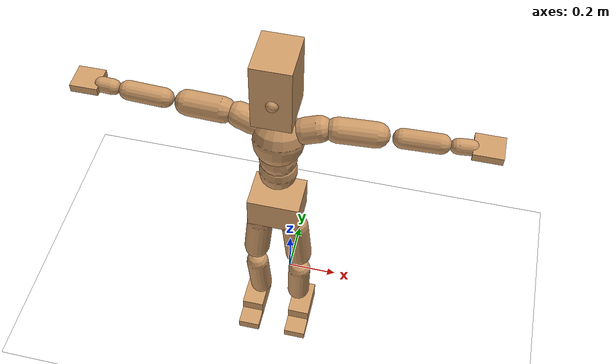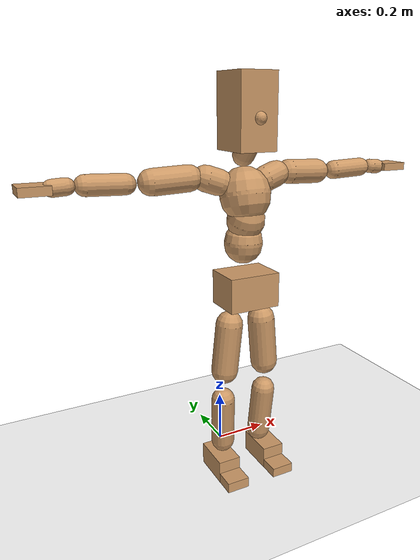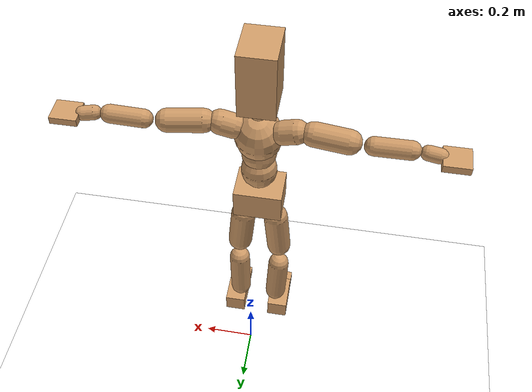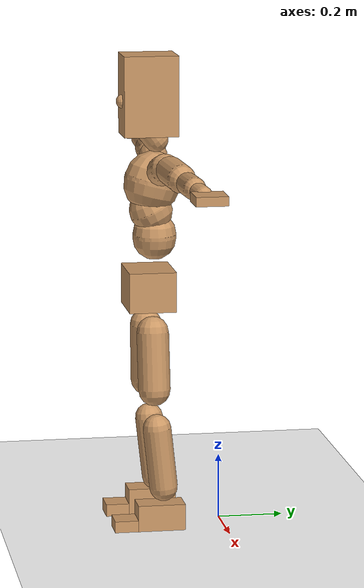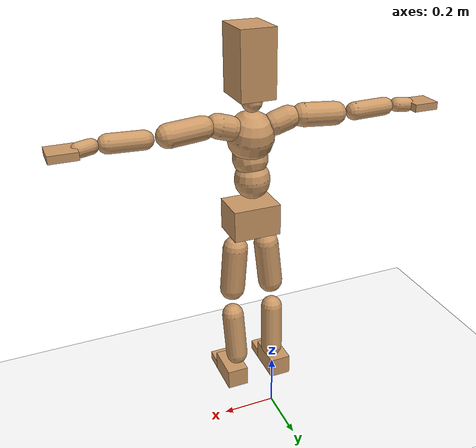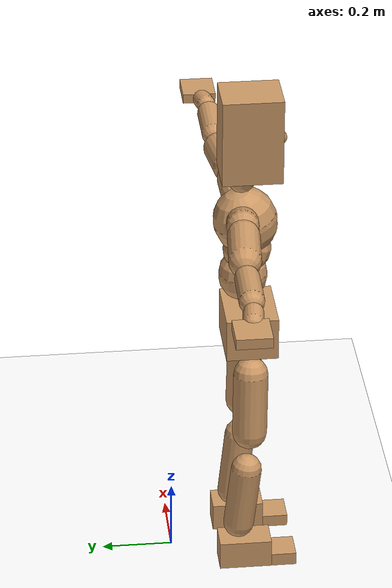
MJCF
<mujoco model="humanoid">
  <option integrator="implicitfast" />

  <visual>
    <global offwidth="1280" offheight="960" />
    <headlight active="1" ambient="0.34 0.34 0.34" diffuse="0.5 0.5 0.5" />
  </visual>

  <default>
    <joint damping="2" stiffness="2" armature="0.01" limited="true" solimplimit="0 .99 .01" />
    <geom condim="1" friction="0.7 0.005 0.0001" solimp=".99 .99 .003" solref="0.015 1" margin="0.001" rgba="0.8 0.6 .4 1" />
    <default class="smplcontact">
      <geom condim="3" friction="1. 0.005 0.0001" solref="0.015 1" solimp="0.98 0.98 0.001" priority="1" />
    </default>
    <default class="stiff_medium">
      <joint stiffness="10" />
    </default>
    <default class="stiff_medium_higher">
      <joint stiffness="50" />
    </default>
    <default class="stiff_high">
      <joint stiffness="100" />
    </default>
  </default>

  <asset>
    <texture type="skybox" builtin="gradient" rgb1="0.99 0.99 0.99" rgb2="0.608 0.828 0.892" width="100" />
    <texture builtin="flat" height="1278" mark="cross" markrgb="1 1 1" name="texgeom" random="0.01" rgb1="0.8 0.6 0.4" rgb2="0.8 0.6 0.4" type="cube" width="127" />
    <texture name="texplane" type="2d" builtin="checker" markrgb="1 1 1" rgb1="0.756 0.772 0.76" rgb2="0.6 0.6 0.6" width="100" height="100" />
    <material name="MatPlane" reflectance="0.5" texture="texplane" texrepeat="1 1" texuniform="true" />
    <material name="geom" texture="texgeom" texuniform="true" />
  </asset>

  <worldbody>
    <light name="tracking_light" pos="0 0 7" dir="0 0 -1" directional="true" cutoff="100" exponent="1" diffuse="1 1 1" specular="0.1 0.1 0.1" mode="trackcom" />
    <camera name="back" pos="0 3 2.4" xyaxes="-1 0 0 0 -1 2" mode="trackcom" />
    <camera name="side" pos="-3 0 2.4" xyaxes="0 -1 0 1 0 2" mode="trackcom" />
    <camera name="front_side" pos="-2.8 -2.8 0.8" xyaxes="0.5 -0.5 0 0.1 0.1 1" mode="trackcom" />
    <geom condim="3" name="floor" pos="0 0 0" rgba="1 1 1 1" size="100 100 .2" type="plane" material="MatPlane" />
    <body name="Pelvis" pos="-0.0018 -0.2233 0.748348" euler="90 0 0">
      <site name="Pelvis" size="0.01" />
      <freejoint name="Pelvis" />
      <geom type="box" pos="0 -0.0103203 -0.0048092" size="0.0934734 0.0615808 0.0725752" quat="1.0000 0.0000 0.0000 0.0000" density="3165.830099" name="Pelvis" />
      <body name="L_Hip" pos="0.0607708 -0.0779569 -0.00594592">
        <joint name="L_Hip_x" type="hinge" pos="0 0 0" axis="1 0 0" stiffness="10" range="-160.0 22.92" class="stiff_medium" damping="15" />
        <joint name="L_Hip_y" type="hinge" pos="0 0 0" axis="0 1 0" stiffness="10" range="-70.0 70.0" class="stiff_medium" damping="10" />
        <joint name="L_Hip_z" type="hinge" pos="0 0 0" axis="0 0 1" stiffness="10" range="-28.65 90.0" class="stiff_medium" damping="10" />
        <geom type="capsule" density="2040.816327" fromto="0.00542732 -0.058977 -0.00070774 0.0215478 -0.236066 -0.00283092" size="0.0495751" name="L_Hip" />
        <body name="L_Knee" pos="0.0269751 -0.295043 -0.00353866">
          <joint name="L_Knee_x" type="hinge" pos="0 0 0" axis="1 0 0" range="-5.16 171.89" damping="8" />
          <joint name="L_Knee_y" type="hinge" pos="0 0 0" axis="0 1 0" range="-4.58 6.88" damping="8" />
          <joint name="L_Knee_z" type="hinge" pos="0 0 0" axis="0 0 1" range="-6.88 4.58" damping="8" />
          <geom type="capsule" density="1234.567901" fromto="-0.00212253 -0.0625946 -0.00684005 -0.0085707 -0.250378 -0.0275214" size="0.04361" name="L_Knee" />
          <body name="L_Ankle" pos="-0.0106932 -0.312973 -0.0343614">
            <joint name="L_Ankle_x" type="hinge" pos="0 0 0" axis="1 0 0" range="-45.84 45.84" class="stiff_medium" damping="6" />
            <joint name="L_Ankle_y" type="hinge" pos="0 0 0" axis="0 1 0" range="-74.48 22.92" class="stiff_medium" damping="3" />
            <joint name="L_Ankle_z" type="hinge" pos="0 0 0" axis="0 0 1" range="-4.58 4.58" class="stiff_medium" damping="6" />
            <geom type="box" pos="0.0203735 -0.0208982 0.0207429" size="0.0422335 0.0405722 0.0728572" quat="1.0000 0.0000 0.0000 0.0000" density="449.071558" name="L_Ankle" class="smplcontact" />
            <body name="L_Toe" pos="0.0230842 -0.0487915 0.102257">
              <joint name="L_Toe_x" type="hinge" pos="0 0 0" axis="1 0 0" range="-91.67 22.92" />
              <joint name="L_Toe_y" type="hinge" pos="0 0 0" axis="0 1 0" range="-4.58 4.58" />
              <joint name="L_Toe_z" type="hinge" pos="0 0 0" axis="0 0 1" range="-4.58 4.58" />
              <geom type="box" pos="-0.0026232 0.0048092 0.0212572" size="0.0417963 0.017488 0.0425143" quat="1.0000 0.0000 0.0000 0.0000" density="423.206892" name="L_Toe" class="smplcontact" />
            </body>
          </body>
        </body>
      </body>
      <body name="R_Hip" pos="-0.0591969 -0.0771893 -0.00375992">
        <joint name="R_Hip_x" type="hinge" pos="0 0 0" axis="1 0 0" stiffness="10" range="-160.0 22.92" class="stiff_medium" damping="15" />
        <joint name="R_Hip_y" type="hinge" pos="0 0 0" axis="0 1 0" stiffness="10" range="-70.0 70.0" class="stiff_medium" damping="10" />
        <joint name="R_Hip_z" type="hinge" pos="0 0 0" axis="0 0 1" stiffness="10" range="-90.0 28.65" class="stiff_medium" damping="10" />
        <geom type="capsule" density="2040.816327" fromto="-0.00605636 -0.0601566 -0.00141612 -0.0240641 -0.240705 -0.00558384" size="0.0488497" name="R_Hip" />
        <body name="R_Knee" pos="-0.0301204 -0.300862 -0.00699996">
          <joint name="R_Knee_x" type="hinge" pos="0 0 0" axis="1 0 0" range="-5.16 171.89" damping="8" />
          <joint name="R_Knee_y" type="hinge" pos="0 0 0" axis="0 1 0" range="-6.88 4.58" damping="8" />
          <joint name="R_Knee_z" type="hinge" pos="0 0 0" axis="0 0 1" range="-4.58 6.88" damping="8" />
          <geom type="capsule" density="1234.567901" fromto="0.00251764 -0.0626729 -0.00668531 0.00990945 -0.250613 -0.0265803" size="0.04361" name="R_Knee" />
          <body name="R_Ankle" pos="0.0124271 -0.313286 -0.0332656">
            <joint name="R_Ankle_x" type="hinge" pos="0 0 0" axis="1 0 0" range="-45.84 45.84" class="stiff_medium" damping="6" />
            <joint name="R_Ankle_y" type="hinge" pos="0 0 0" axis="0 1 0" range="-22.92 74.48" class="stiff_medium" damping="3" />
            <joint name="R_Ankle_z" type="hinge" pos="0 0 0" axis="0 0 1" range="-4.58 4.58" class="stiff_medium" damping="6" />
            <geom type="box" pos="-0.0185373 -0.0152146 0.0219429" size="0.0422335 0.0417963 0.074143" quat="1.0000 0.0000 0.0000 0.0000" density="434.700981" name="R_Ankle" class="smplcontact" />
            <body name="R_Toe" pos="-0.0222098 -0.0420586 0.105686">
              <joint name="R_Toe_x" type="hinge" pos="0 0 0" axis="1 0 0" range="-91.67 22.92" />
              <joint name="R_Toe_y" type="hinge" pos="0 0 0" axis="0 1 0" range="-4.58 4.58" />
              <joint name="R_Toe_z" type="hinge" pos="0 0 0" axis="0 0 1" range="-4.58 4.58" />
              <geom type="box" pos="0.00367248 0.0039348 0.0194572" size="0.0418838 0.018887 0.0422572" quat="1.0000 0.0000 0.0000 0.0000" density="407.384095" name="R_Toe" class="smplcontact" />
            </body>
          </body>
        </body>
      </body>
      <body name="Torso" pos="-0.002186 0.0929683 -0.0233465">
        <joint name="Torso_x" type="hinge" pos="0 0 0" axis="1 0 0" range="-25.78 57.3" class="stiff_medium" damping="15" />
        <joint name="Torso_y" type="hinge" pos="0 0 0" axis="0 1 0" range="-57.3 57.3" class="stiff_high" damping="20" />
        <joint name="Torso_z" type="hinge" pos="0 0 0" axis="0 0 1" range="-34.38 34.38" class="stiff_high" damping="20" />
        <geom type="capsule" density="2040.816327" fromto="0.00215051 0.0521697 0.000430101 0.00257953 0.0637535 0.000515907" size="0.0676489" name="Torso" />
        <body name="Spine" pos="0.00472996 0.116009 0.000945992">
          <joint name="Spine_x" type="hinge" pos="0 0 0" axis="1 0 0" stiffness="10" range="-25.78 57.3" class="stiff_medium" damping="15" />
          <joint name="Spine_y" type="hinge" pos="0 0 0" axis="0 1 0" stiffness="10" range="-57.3 57.3" class="stiff_high" damping="8" />
          <joint name="Spine_z" type="hinge" pos="0 0 0" axis="0 0 1" stiffness="20" range="-34.38 34.38" class="stiff_high" damping="12" />
          <geom type="capsule" density="2040.816327" fromto="0.000606114 0.020424 0.00977701 0.00069192 0.0249717 0.012008" size="0.0664173" name="Spine" />
          <body name="Chest" pos="0.00129803 0.0453958 0.021785">
            <joint name="Chest_x" type="hinge" pos="0 0 0" axis="1 0 0" stiffness="10" range="-25.78 57.3" class="stiff_medium" damping="15" />
            <joint name="Chest_y" type="hinge" pos="0 0 0" axis="0 1 0" stiffness="10" range="-57.3 57.3" class="stiff_high" damping="8" />
            <joint name="Chest_z" type="hinge" pos="0 0 0" axis="0 0 1" stiffness="20" range="-34.38 34.38" class="stiff_high" damping="12" />
            <geom type="capsule" density="2040.816327" fromto="-0.000781965 0.0585211 -0.014838 -0.000867771 0.0714778 -0.0181844" size="0.0881459" name="Chest" />
            <body name="Neck" pos="-0.00243293 0.183603 -0.0365601">
              <joint name="Neck_x" type="hinge" pos="0 0 0" axis="1 0 0" range="-28.65 57.3" class="stiff_medium_higher" damping="10" />
              <joint name="Neck_y" type="hinge" pos="0 0 0" axis="0 1 0" range="-40.11 40.11" class="stiff_medium_higher" damping="10" />
              <joint name="Neck_z" type="hinge" pos="0 0 0" axis="0 0 1" range="-40.11 40.11" class="stiff_medium_higher" damping="10" />
              <geom type="capsule" density="1000" fromto="0.000856401 0.0111426 0.00882905 0.00351355 0.0445712 0.0352291" size="0.0383113" name="Neck" />
              <body name="Head" pos="0.00445789 0.0557147 0.043971">
                <joint name="Head_x" type="hinge" pos="0 0 0" axis="1 0 0" range="-28.65 57.3" class="stiff_medium_higher" damping="2" />
                <joint name="Head_y" type="hinge" pos="0 0 0" axis="0 1 0" range="-40.11 40.11" class="stiff_medium_higher" damping="2" />
                <joint name="Head_z" type="hinge" pos="0 0 0" axis="0 0 1" range="-40.11 40.11" class="stiff_medium_higher" damping="2" />
                <geom type="box" pos="-0.00459522 0.0934872 -0.0126916" size="0.0663025 0.123156 0.0831516" quat="1.0000 0.0000 0.0000 0.0000" density="1018.069894" name="Head" />
                <geom type="capsule" name="nose" size="0.021882 0.010941" pos="0 0.0747044 0.054705" quat="1 0 0 0" mass="0" contype="0" conaffinity="0" />
              </body>
            </body>
            <body name="L_Thorax" pos="0.0693378 0.104422 -0.0293166">
              <joint name="L_Thorax_x" type="hinge" pos="0 0 0" axis="1 0 0" range="-10.89 4.58" class="stiff_medium_higher" damping="20" />
              <joint name="L_Thorax_y" type="hinge" pos="0 0 0" axis="0 1 0" range="-28.65 17.19" class="stiff_medium_higher" damping="20" />
              <joint name="L_Thorax_z" type="hinge" pos="0 0 0" axis="0 0 1" range="-31.51 40.11" class="stiff_medium_higher" damping="20" />
              <geom type="capsule" density="1000" fromto="0.0154296 0.00517145 -0.00152671 0.0617185 0.0206859 -0.00601996" size="0.0452801" name="L_Thorax" />
              <body name="L_Shoulder" pos="0.0771481 0.0258573 -0.00754667">
                <joint name="L_Shoulder_x" type="hinge" pos="0 0 0" axis="1 0 0" range="-97.4 97.4" class="stiff_medium" damping="6" />
                <joint name="L_Shoulder_y" type="hinge" pos="0 0 0" axis="0 1 0" range="-108.86 80.21" class="stiff_medium" damping="6" />
                <joint name="L_Shoulder_z" type="hinge" pos="0 0 0" axis="0 0 1" range="-97.4 85.94" class="stiff_medium" damping="6" />
                <geom type="capsule" density="1000" fromto="0.0423112 -0.00212104 -0.00448392 0.169326 -0.00831691 -0.0179355" size="0.0432109" name="L_Shoulder" />
                <body name="L_Elbow" pos="0.211638 -0.0104379 -0.0224194">
                  <joint name="L_Elbow_x" type="hinge" pos="0 0 0" axis="1 0 0" range="-17.19 4.58" damping="5" />
                  <joint name="L_Elbow_y" type="hinge" pos="0 0 0" axis="0 1 0" range="-180.0 17.19" damping="5" />
                  <joint name="L_Elbow_z" type="hinge" pos="0 0 0" axis="0 0 1" range="-100.84 4.58" damping="5" />
                  <geom type="capsule" density="1000" fromto="0.0405992 0.00146749 -0.00016237 0.16256 0.00586982 -0.000733042" size="0.0338499" name="L_Elbow" />
                  <body name="L_Wrist" pos="0.203159 0.00733731 -0.000978993">
                    <joint name="L_Wrist_x" type="hinge" pos="0 0 0" axis="1 0 0" range="-180.0 22.92" />
                    <joint name="L_Wrist_y" type="hinge" pos="0 0 0" axis="0 1 0" range="-17.19 17.19" />
                    <joint name="L_Wrist_z" type="hinge" pos="0 0 0" axis="0 0 1" range="-22.92 22.92" />
                    <geom type="capsule" density="1000" fromto="0.0136962 -0.00130371 -0.00244575 0.0547846 -0.00529842 -0.00978296" size="0.0265784" name="L_Wrist" class="smplcontact" />
                    <body name="L_Hand" pos="0.0684809 -0.00668573 -0.0121452">
                      <joint name="L_Hand_x" type="hinge" pos="0 0 0" axis="1 0 0" range="-17.19 17.19" />
                      <joint name="L_Hand_y" type="hinge" pos="0 0 0" axis="0 1 0" range="-51.57 51.57" />
                      <joint name="L_Hand_z" type="hinge" pos="0 0 0" axis="0 0 1" range="-91.67 91.67" />
                      <geom type="box" pos="0.042049 0.0008744 -0.00507152" size="0.0498958 0.0138155 0.0470427" quat="1.0000 0.0000 0.0000 0.0000" density="400.552564" name="L_Hand" class="smplcontact" />
                    </body>
                  </body>
                </body>
              </body>
            </body>
            <body name="R_Thorax" pos="-0.0719421 0.101885 -0.0332788">
              <joint name="R_Thorax_x" type="hinge" pos="0 0 0" axis="1 0 0" range="-10.89 4.58" class="stiff_medium_higher" damping="20" />
              <joint name="R_Thorax_y" type="hinge" pos="0 0 0" axis="0 1 0" range="-17.19 28.65" class="stiff_medium_higher" damping="20" />
              <joint name="R_Thorax_z" type="hinge" pos="0 0 0" axis="0 0 1" range="-40.11 31.51" class="stiff_medium_higher" damping="20" />
              <geom type="capsule" density="1000" fromto="-0.0162775 0.00551061 -0.0015253 -0.0651098 0.0220424 -0.00618811" size="0.044411" name="R_Thorax" />
              <body name="R_Shoulder" pos="-0.0813866 0.0276397 -0.00771335">
                <joint name="R_Shoulder_x" type="hinge" pos="0 0 0" axis="1 0 0" range="-97.4 97.4" class="stiff_medium" damping="6" />
                <joint name="R_Shoulder_y" type="hinge" pos="0 0 0" axis="0 1 0" range="-80.21 108.86" class="stiff_medium" damping="6" />
                <joint name="R_Shoulder_z" type="hinge" pos="0 0 0" axis="0 0 1" range="-85.94 97.4" class="stiff_medium" damping="6" />
                <geom type="capsule" density="1000" fromto="-0.0413329 -0.00220192 -0.00350635 -0.165495 -0.00872388 -0.0139415" size="0.044381" name="R_Shoulder" />
                <body name="R_Elbow" pos="-0.206828 -0.0108422 -0.0174479">
                  <joint name="R_Elbow_x" type="hinge" pos="0 0 0" axis="1 0 0" range="-17.19 4.58" damping="5" />
                  <joint name="R_Elbow_y" type="hinge" pos="0 0 0" axis="0 1 0" range="-17.19 180.0" damping="5" />
                  <joint name="R_Elbow_z" type="hinge" pos="0 0 0" axis="0 0 1" range="-4.58 100.84" damping="5" />
                  <geom type="capsule" density="1000" fromto="-0.041659 0.00130572 -0.00089674 -0.166473 0.00505585 -0.00358705" size="0.0341006" name="R_Elbow" />
                  <body name="R_Wrist" pos="-0.208132 0.00636157 -0.00456737">
                    <joint name="R_Wrist_x" type="hinge" pos="0 0 0" axis="1 0 0" range="-180.0 22.92" />
                    <joint name="R_Wrist_y" type="hinge" pos="0 0 0" axis="0 1 0" range="-17.19 17.19" />
                    <joint name="R_Wrist_z" type="hinge" pos="0 0 0" axis="0 0 1" range="-22.92 22.92" />
                    <geom type="capsule" density="1000" fromto="-0.0137776 -0.000977656 -0.00171278 -0.0551921 -0.00399407 -0.0067673" size="0.0272471" name="R_Wrist" class="smplcontact" />
                    <body name="R_Hand" pos="-0.0689699 -0.00497174 -0.00839653">
                      <joint name="R_Hand_x" type="hinge" pos="0 0 0" axis="1 0 0" range="-17.19 17.19" />
                      <joint name="R_Hand_y" type="hinge" pos="0 0 0" axis="0 1 0" range="-51.57 51.57" />
                      <joint name="R_Hand_z" type="hinge" pos="0 0 0" axis="0 0 1" range="-91.67 91.67" />
                      <geom type="box" pos="-0.0394049 -0.00078696 -0.00690776" size="0.0485311 0.0143402 0.0477422" quat="1.0000 0.0000 0.0000 0.0000" density="403.679611" name="R_Hand" class="smplcontact" />
                    </body>
                  </body>
                </body>
              </body>
            </body>
          </body>
        </body>
      </body>
    </body>
  </worldbody>
  <actuator>
    <general name="L_Hip_x" joint="L_Hip_x" biastype="affine" gainprm="287.33006409732246" biasprm="-215.3247604770444 -180 -2.0" ctrllimited="true" ctrlrange="-1 1" forcerange="-360 360" />
    <general name="L_Hip_y" joint="L_Hip_y" biastype="affine" gainprm="219.9114857512855" biasprm="0.0 -180 -2.0" ctrllimited="true" ctrlrange="-1 1" forcerange="-360 360" />
    <general name="L_Hip_z" joint="L_Hip_z" biastype="affine" gainprm="186.3749841742145" biasprm="96.3683546488669 -180 -2.0" ctrllimited="true" ctrlrange="-1 1" forcerange="-360 360" />
    <general name="L_Knee_x" joint="L_Knee_x" biastype="affine" gainprm="278.10948965903646" biasprm="261.8988715665131 -180 -2.0" ctrllimited="true" ctrlrange="-1 1" forcerange="-360 360" />
    <general name="L_Knee_y" joint="L_Knee_y" biastype="affine" gainprm="18.001325905069514" biasprm="3.612831551628262 -180 -2.0" ctrllimited="true" ctrlrange="-1 1" forcerange="-360 360" />
    <general name="L_Knee_z" joint="L_Knee_z" biastype="affine" gainprm="18.001325905069514" biasprm="-3.612831551628262 -180 -2.0" ctrllimited="true" ctrlrange="-1 1" forcerange="-360 360" />
    <general name="L_Ankle_x" joint="L_Ankle_x" biastype="affine" gainprm="72.00530362027807" biasprm="0.0 -90 -2.0" ctrllimited="true" ctrlrange="-1 1" forcerange="-180 180" />
    <general name="L_Ankle_y" joint="L_Ankle_y" biastype="affine" gainprm="76.49778111491148" biasprm="-40.49512930477244 -90 -2.0" ctrllimited="true" ctrlrange="-1 1" forcerange="-180 180" />
    <general name="L_Ankle_z" joint="L_Ankle_z" biastype="affine" gainprm="7.1942471767206255" biasprm="0.0 -90 -2.0" ctrllimited="true" ctrlrange="-1 1" forcerange="-180 180" />
    <general name="L_Toe_x" joint="L_Toe_x" biastype="affine" gainprm="71.99902043497087" biasprm="-43.19689898685965 -72 -0.8" ctrllimited="true" ctrlrange="-1 1" forcerange="-144 144" />
    <general name="L_Toe_y" joint="L_Toe_y" biastype="affine" gainprm="5.755397741376501" biasprm="0.0 -72 -0.8" ctrllimited="true" ctrlrange="-1 1" forcerange="-144 144" />
    <general name="L_Toe_z" joint="L_Toe_z" biastype="affine" gainprm="5.755397741376501" biasprm="0.0 -72 -0.8" ctrllimited="true" ctrlrange="-1 1" forcerange="-144 144" />
    <general name="R_Hip_x" joint="R_Hip_x" biastype="affine" gainprm="287.33006409732246" biasprm="-215.3247604770444 -180 -2.0" ctrllimited="true" ctrlrange="-1 1" forcerange="-360 360" />
    <general name="R_Hip_y" joint="R_Hip_y" biastype="affine" gainprm="219.9114857512855" biasprm="0.0 -180 -2.0" ctrllimited="true" ctrlrange="-1 1" forcerange="-360 360" />
    <general name="R_Hip_z" joint="R_Hip_z" biastype="affine" gainprm="186.3749841742145" biasprm="-96.3683546488669 -180 -2.0" ctrllimited="true" ctrlrange="-1 1" forcerange="-360 360" />
    <general name="R_Knee_x" joint="R_Knee_x" biastype="affine" gainprm="278.10948965903646" biasprm="261.8988715665131 -180 -2.0" ctrllimited="true" ctrlrange="-1 1" forcerange="-360 360" />
    <general name="R_Knee_y" joint="R_Knee_y" biastype="affine" gainprm="18.001325905069514" biasprm="-3.612831551628262 -180 -2.0" ctrllimited="true" ctrlrange="-1 1" forcerange="-360 360" />
    <general name="R_Knee_z" joint="R_Knee_z" biastype="affine" gainprm="18.001325905069514" biasprm="3.612831551628262 -180 -2.0" ctrllimited="true" ctrlrange="-1 1" forcerange="-360 360" />
    <general name="R_Ankle_x" joint="R_Ankle_x" biastype="affine" gainprm="72.00530362027807" biasprm="0.0 -90 -2.0" ctrllimited="true" ctrlrange="-1 1" forcerange="-180 180" />
    <general name="R_Ankle_y" joint="R_Ankle_y" biastype="affine" gainprm="76.49778111491148" biasprm="40.49512930477244 -90 -2.0" ctrllimited="true" ctrlrange="-1 1" forcerange="-180 180" />
    <general name="R_Ankle_z" joint="R_Ankle_z" biastype="affine" gainprm="7.1942471767206255" biasprm="0.0 -90 -2.0" ctrllimited="true" ctrlrange="-1 1" forcerange="-180 180" />
    <general name="R_Toe_x" joint="R_Toe_x" biastype="affine" gainprm="71.99902043497087" biasprm="-43.19689898685965 -72 -0.8" ctrllimited="true" ctrlrange="-1 1" forcerange="-144 144" />
    <general name="R_Toe_y" joint="R_Toe_y" biastype="affine" gainprm="5.755397741376501" biasprm="0.0 -72 -0.8" ctrllimited="true" ctrlrange="-1 1" forcerange="-144 144" />
    <general name="R_Toe_z" joint="R_Toe_z" biastype="affine" gainprm="5.755397741376501" biasprm="0.0 -72 -0.8" ctrllimited="true" ctrlrange="-1 1" forcerange="-144 144" />
    <general name="Torso_x" joint="Torso_x" biastype="affine" gainprm="174.00234510682668" biasprm="66.0153336274335 -240 -4.0" ctrllimited="true" ctrlrange="-1 1" forcerange="-360 360" />
    <general name="Torso_y" joint="Torso_y" biastype="affine" gainprm="240.0176787342602" biasprm="0.0 -240 -4.0" ctrllimited="true" ctrlrange="-1 1" forcerange="-360 360" />
    <general name="Torso_z" joint="Torso_z" biastype="affine" gainprm="144.01060724055614" biasprm="0.0 -240 -4.0" ctrllimited="true" ctrlrange="-1 1" forcerange="-360 360" />
    <general name="Spine_x" joint="Spine_x" biastype="affine" gainprm="174.00234510682668" biasprm="66.0153336274335 -240 -4.0" ctrllimited="true" ctrlrange="-1 1" forcerange="-360 360" />
    <general name="Spine_y" joint="Spine_y" biastype="affine" gainprm="240.0176787342602" biasprm="0.0 -240 -4.0" ctrllimited="true" ctrlrange="-1 1" forcerange="-360 360" />
    <general name="Spine_z" joint="Spine_z" biastype="affine" gainprm="144.01060724055614" biasprm="0.0 -240 -4.0" ctrllimited="true" ctrlrange="-1 1" forcerange="-360 360" />
    <general name="Chest_x" joint="Chest_x" biastype="affine" gainprm="174.00234510682668" biasprm="66.0153336274335 -240 -4.0" ctrllimited="true" ctrlrange="-1 1" forcerange="-360 360" />
    <general name="Chest_y" joint="Chest_y" biastype="affine" gainprm="240.0176787342602" biasprm="0.0 -240 -4.0" ctrllimited="true" ctrlrange="-1 1" forcerange="-360 360" />
    <general name="Chest_z" joint="Chest_z" biastype="affine" gainprm="144.01060724055614" biasprm="0.0 -240 -4.0" ctrllimited="true" ctrlrange="-1 1" forcerange="-360 360" />
    <general name="Neck_x" joint="Neck_x" biastype="affine" gainprm="27.00198885760427" biasprm="9.000662952534757 -36 -0.8" ctrllimited="true" ctrlrange="-1 1" forcerange="-72 72" />
    <general name="Neck_y" joint="Neck_y" biastype="affine" gainprm="25.20185626709732" biasprm="0.0 -36 -0.8" ctrllimited="true" ctrlrange="-1 1" forcerange="-72 72" />
    <general name="Neck_z" joint="Neck_z" biastype="affine" gainprm="25.20185626709732" biasprm="0.0 -36 -0.8" ctrllimited="true" ctrlrange="-1 1" forcerange="-72 72" />
    <general name="Head_x" joint="Head_x" biastype="affine" gainprm="18.001325905069514" biasprm="6.000441968356505 -24 -0.8" ctrllimited="true" ctrlrange="-1 1" forcerange="-48 48" />
    <general name="Head_y" joint="Head_y" biastype="affine" gainprm="16.801237511398213" biasprm="0.0 -24 -0.8" ctrllimited="true" ctrlrange="-1 1" forcerange="-48 48" />
    <general name="Head_z" joint="Head_z" biastype="affine" gainprm="16.801237511398213" biasprm="0.0 -24 -0.8" ctrllimited="true" ctrlrange="-1 1" forcerange="-48 48" />
    <general name="L_Thorax_x" joint="L_Thorax_x" biastype="affine" gainprm="16.200146117011364" biasprm="-6.6078165480505335 -120 -1.6" ctrllimited="true" ctrlrange="-1 1" forcerange="-240 240" />
    <general name="L_Thorax_y" joint="L_Thorax_y" biastype="affine" gainprm="48.00353574685204" biasprm="-12.00088393671301 -120 -1.6" ctrllimited="true" ctrlrange="-1 1" forcerange="-240 240" />
    <general name="L_Thorax_z" joint="L_Thorax_z" biastype="affine" gainprm="75.00028861670033" biasprm="9.00589894029074 -120 -1.6" ctrllimited="true" ctrlrange="-1 1" forcerange="-240 240" />
    <general name="L_Shoulder_x" joint="L_Shoulder_x" biastype="affine" gainprm="81.5976331892389" biasprm="0.0 -48 -1.6" ctrllimited="true" ctrlrange="-1 1" forcerange="-96 96" />
    <general name="L_Shoulder_y" joint="L_Shoulder_y" biastype="affine" gainprm="79.19745640189629" biasprm="-12.00088393671301 -48 -1.6" ctrllimited="true" ctrlrange="-1 1" forcerange="-96 96" />
    <general name="L_Shoulder_z" joint="L_Shoulder_z" biastype="affine" gainprm="76.79727961455369" biasprm="-4.800353574685214 -48 -1.6" ctrllimited="true" ctrlrange="-1 1" forcerange="-96 96" />
    <general name="L_Elbow_x" joint="L_Elbow_x" biastype="affine" gainprm="13.67849441372996" biasprm="-7.923096672353461 -72 -0.8" ctrllimited="true" ctrlrange="-1 1" forcerange="-144 144" />
    <general name="L_Elbow_y" joint="L_Elbow_y" biastype="affine" gainprm="123.89813107227425" biasprm="-102.29653998619085 -72 -0.8" ctrllimited="true" ctrlrange="-1 1" forcerange="-144 144" />
    <general name="L_Elbow_z" joint="L_Elbow_z" biastype="affine" gainprm="66.23733950828719" biasprm="-60.4819417669107 -72 -0.8" ctrllimited="true" ctrlrange="-1 1" forcerange="-144 144" />
    <general name="L_Wrist_x" joint="L_Wrist_x" biastype="affine" gainprm="21.24973270888136" biasprm="-16.449379134196157 -12 -0.8" ctrllimited="true" ctrlrange="-1 1" forcerange="-24 24" />
    <general name="L_Wrist_y" joint="L_Wrist_y" biastype="affine" gainprm="3.6002651810139037" biasprm="0.0 -12 -0.8" ctrllimited="true" ctrlrange="-1 1" forcerange="-24 24" />
    <general name="L_Wrist_z" joint="L_Wrist_z" biastype="affine" gainprm="4.800353574685205" biasprm="0.0 -12 -0.8" ctrllimited="true" ctrlrange="-1 1" forcerange="-24 24" />
    <general name="L_Hand_x" joint="L_Hand_x" biastype="affine" gainprm="3.6002651810139037" biasprm="0.0 -12 -0.8" ctrllimited="true" ctrlrange="-1 1" forcerange="-24 24" />
    <general name="L_Hand_y" joint="L_Hand_y" biastype="affine" gainprm="10.800795543041708" biasprm="0.0 -12 -0.8" ctrllimited="true" ctrlrange="-1 1" forcerange="-24 24" />
    <general name="L_Hand_z" joint="L_Hand_z" biastype="affine" gainprm="19.199319903638422" biasprm="0.0 -12 -0.8" ctrllimited="true" ctrlrange="-1 1" forcerange="-24 24" />
    <general name="R_Thorax_x" joint="R_Thorax_x" biastype="affine" gainprm="16.200146117011364" biasprm="-6.6078165480505335 -120 -1.6" ctrllimited="true" ctrlrange="-1 1" forcerange="-240 240" />
    <general name="R_Thorax_y" joint="R_Thorax_y" biastype="affine" gainprm="48.00353574685204" biasprm="12.000883936713002 -120 -1.6" ctrllimited="true" ctrlrange="-1 1" forcerange="-240 240" />
    <general name="R_Thorax_z" joint="R_Thorax_z" biastype="affine" gainprm="75.00028861670033" biasprm="-9.00589894029074 -120 -1.6" ctrllimited="true" ctrlrange="-1 1" forcerange="-240 240" />
    <general name="R_Shoulder_x" joint="R_Shoulder_x" biastype="affine" gainprm="81.5976331892389" biasprm="0.0 -48 -1.6" ctrllimited="true" ctrlrange="-1 1" forcerange="-96 96" />
    <general name="R_Shoulder_y" joint="R_Shoulder_y" biastype="affine" gainprm="79.19745640189629" biasprm="12.00088393671301 -48 -1.6" ctrllimited="true" ctrlrange="-1 1" forcerange="-96 96" />
    <general name="R_Shoulder_z" joint="R_Shoulder_z" biastype="affine" gainprm="76.79727961455369" biasprm="4.800353574685204 -48 -1.6" ctrllimited="true" ctrlrange="-1 1" forcerange="-96 96" />
    <general name="R_Elbow_x" joint="R_Elbow_x" biastype="affine" gainprm="13.67849441372996" biasprm="-7.923096672353461 -72 -0.8" ctrllimited="true" ctrlrange="-1 1" forcerange="-144 144" />
    <general name="R_Elbow_y" joint="R_Elbow_y" biastype="affine" gainprm="123.89813107227425" biasprm="102.29653998619085 -72 -0.8" ctrllimited="true" ctrlrange="-1 1" forcerange="-144 144" />
    <general name="R_Elbow_z" joint="R_Elbow_z" biastype="affine" gainprm="66.23733950828719" biasprm="60.481941766910694 -72 -0.8" ctrllimited="true" ctrlrange="-1 1" forcerange="-144 144" />
    <general name="R_Wrist_x" joint="R_Wrist_x" biastype="affine" gainprm="21.24973270888136" biasprm="-16.449379134196157 -12 -0.8" ctrllimited="true" ctrlrange="-1 1" forcerange="-24 24" />
    <general name="R_Wrist_y" joint="R_Wrist_y" biastype="affine" gainprm="3.6002651810139037" biasprm="0.0 -12 -0.8" ctrllimited="true" ctrlrange="-1 1" forcerange="-24 24" />
    <general name="R_Wrist_z" joint="R_Wrist_z" biastype="affine" gainprm="4.800353574685205" biasprm="0.0 -12 -0.8" ctrllimited="true" ctrlrange="-1 1" forcerange="-24 24" />
    <general name="R_Hand_x" joint="R_Hand_x" biastype="affine" gainprm="3.6002651810139037" biasprm="0.0 -12 -0.8" ctrllimited="true" ctrlrange="-1 1" forcerange="-24 24" />
    <general name="R_Hand_y" joint="R_Hand_y" biastype="affine" gainprm="10.800795543041708" biasprm="0.0 -12 -0.8" ctrllimited="true" ctrlrange="-1 1" forcerange="-24 24" />
    <general name="R_Hand_z" joint="R_Hand_z" biastype="affine" gainprm="19.199319903638422" biasprm="0.0 -12 -0.8" ctrllimited="true" ctrlrange="-1 1" forcerange="-24 24" />
  </actuator>
  <contact>
    <exclude body1="Torso" body2="Chest" />
    <exclude body1="Head" body2="Chest" />
    <exclude body1="R_Knee" body2="R_Toe" />
    <exclude body1="R_Knee" body2="L_Ankle" />
    <exclude body1="R_Knee" body2="L_Toe" />
    <exclude body1="L_Knee" body2="L_Toe" />
    <exclude body1="L_Knee" body2="R_Ankle" />
    <exclude body1="L_Knee" body2="R_Toe" />
    <exclude body1="L_Shoulder" body2="Chest" />
    <exclude body1="R_Shoulder" body2="Chest" />
  </contact>
  <sensor>
    <framelinvel name="sensor_Pelvis_framelinvel" objtype="xbody" objname="Pelvis" />
    <framelinvel name="sensor_L_Hip_framelinvel" objtype="xbody" objname="L_Hip" />
    <framelinvel name="sensor_L_Knee_framelinvel" objtype="xbody" objname="L_Knee" />
    <framelinvel name="sensor_L_Ankle_framelinvel" objtype="xbody" objname="L_Ankle" />
    <framelinvel name="sensor_L_Toe_framelinvel" objtype="xbody" objname="L_Toe" />
    <framelinvel name="sensor_R_Hip_framelinvel" objtype="xbody" objname="R_Hip" />
    <framelinvel name="sensor_R_Knee_framelinvel" objtype="xbody" objname="R_Knee" />
    <framelinvel name="sensor_R_Ankle_framelinvel" objtype="xbody" objname="R_Ankle" />
    <framelinvel name="sensor_R_Toe_framelinvel" objtype="xbody" objname="R_Toe" />
    <framelinvel name="sensor_Torso_framelinvel" objtype="xbody" objname="Torso" />
    <framelinvel name="sensor_Spine_framelinvel" objtype="xbody" objname="Spine" />
    <framelinvel name="sensor_Chest_framelinvel" objtype="xbody" objname="Chest" />
    <framelinvel name="sensor_Neck_framelinvel" objtype="xbody" objname="Neck" />
    <framelinvel name="sensor_Head_framelinvel" objtype="xbody" objname="Head" />
    <framelinvel name="sensor_L_Thorax_framelinvel" objtype="xbody" objname="L_Thorax" />
    <framelinvel name="sensor_L_Shoulder_framelinvel" objtype="xbody" objname="L_Shoulder" />
    <framelinvel name="sensor_L_Elbow_framelinvel" objtype="xbody" objname="L_Elbow" />
    <framelinvel name="sensor_L_Wrist_framelinvel" objtype="xbody" objname="L_Wrist" />
    <framelinvel name="sensor_L_Hand_framelinvel" objtype="xbody" objname="L_Hand" />
    <framelinvel name="sensor_R_Thorax_framelinvel" objtype="xbody" objname="R_Thorax" />
    <framelinvel name="sensor_R_Shoulder_framelinvel" objtype="xbody" objname="R_Shoulder" />
    <framelinvel name="sensor_R_Elbow_framelinvel" objtype="xbody" objname="R_Elbow" />
    <framelinvel name="sensor_R_Wrist_framelinvel" objtype="xbody" objname="R_Wrist" />
    <framelinvel name="sensor_R_Hand_framelinvel" objtype="xbody" objname="R_Hand" />
    <frameangvel name="sensor_Pelvis_frameangvel" objtype="xbody" objname="Pelvis" />
    <frameangvel name="sensor_L_Hip_frameangvel" objtype="xbody" objname="L_Hip" />
    <frameangvel name="sensor_L_Knee_frameangvel" objtype="xbody" objname="L_Knee" />
    <frameangvel name="sensor_L_Ankle_frameangvel" objtype="xbody" objname="L_Ankle" />
    <frameangvel name="sensor_L_Toe_frameangvel" objtype="xbody" objname="L_Toe" />
    <frameangvel name="sensor_R_Hip_frameangvel" objtype="xbody" objname="R_Hip" />
    <frameangvel name="sensor_R_Knee_frameangvel" objtype="xbody" objname="R_Knee" />
    <frameangvel name="sensor_R_Ankle_frameangvel" objtype="xbody" objname="R_Ankle" />
    <frameangvel name="sensor_R_Toe_frameangvel" objtype="xbody" objname="R_Toe" />
    <frameangvel name="sensor_Torso_frameangvel" objtype="xbody" objname="Torso" />
    <frameangvel name="sensor_Spine_frameangvel" objtype="xbody" objname="Spine" />
    <frameangvel name="sensor_Chest_frameangvel" objtype="xbody" objname="Chest" />
    <frameangvel name="sensor_Neck_frameangvel" objtype="xbody" objname="Neck" />
    <frameangvel name="sensor_Head_frameangvel" objtype="xbody" objname="Head" />
    <frameangvel name="sensor_L_Thorax_frameangvel" objtype="xbody" objname="L_Thorax" />
    <frameangvel name="sensor_L_Shoulder_frameangvel" objtype="xbody" objname="L_Shoulder" />
    <frameangvel name="sensor_L_Elbow_frameangvel" objtype="xbody" objname="L_Elbow" />
    <frameangvel name="sensor_L_Wrist_frameangvel" objtype="xbody" objname="L_Wrist" />
    <frameangvel name="sensor_L_Hand_frameangvel" objtype="xbody" objname="L_Hand" />
    <frameangvel name="sensor_R_Thorax_frameangvel" objtype="xbody" objname="R_Thorax" />
    <frameangvel name="sensor_R_Shoulder_frameangvel" objtype="xbody" objname="R_Shoulder" />
    <frameangvel name="sensor_R_Elbow_frameangvel" objtype="xbody" objname="R_Elbow" />
    <frameangvel name="sensor_R_Wrist_frameangvel" objtype="xbody" objname="R_Wrist" />
    <frameangvel name="sensor_R_Hand_frameangvel" objtype="xbody" objname="R_Hand" />
    <subtreelinvel name="Chest_subtreelinvel" body="Chest" />
    <gyro name="Pelvis_gyro" site="Pelvis" />
  </sensor>
</mujoco>
